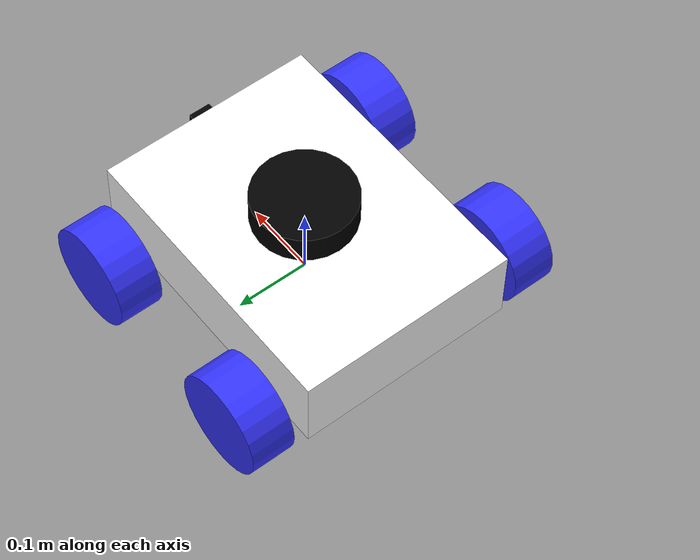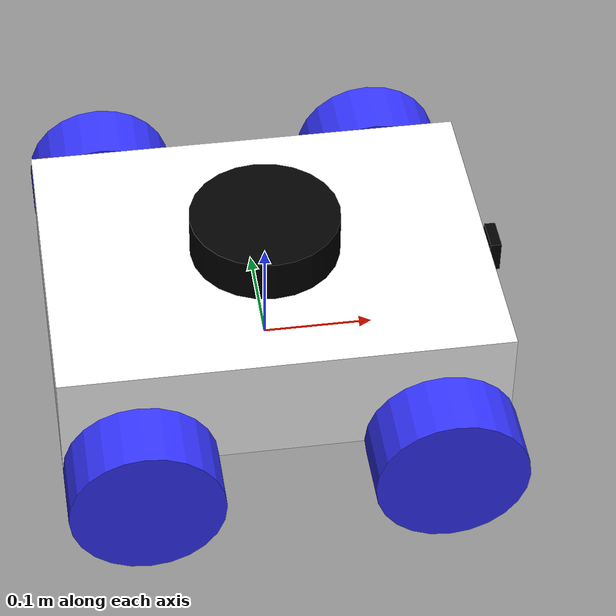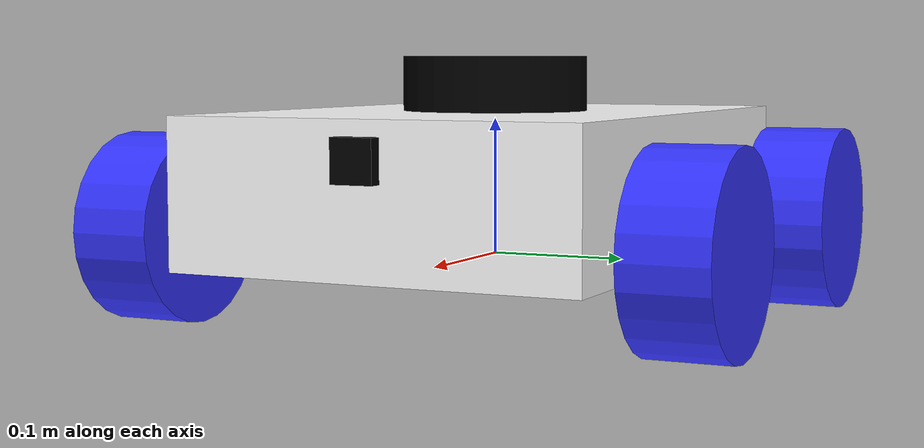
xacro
<?xml version="1.0"?>
<robot xmlns:xacro="http://www.ros.org/wiki/xacro"  name="robot">

    <xacro:arg name="use_ros2_control" default="true"/>
    <xacro:include filename="robot_core.xacro"/>

    <xacro:if value="$(arg use_ros2_control)">
        <xacro:include filename="ros2_control.xacro"/>
    </xacro:if>
    <xacro:unless value="$(arg use_ros2_control)">
        <xacro:include filename="gazebo_control.xacro"/>
    </xacro:unless>

    <xacro:include filename="lidar.xacro"/>
    <xacro:include filename="camera.xacro"/>

</robot>

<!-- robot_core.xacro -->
<robot xmlns:xacro="http://www.ros.org/wiki/xacro">

    <xacro:include filename="inertial_macros.xacro"/>

    <material name="white">
        <color rgba="1 1 1 1"/>
    </material>

    <material name="orange">
        <color rgba="1 0.3 0.1 1"/>
    </material>

    <material name="blue">
        <color rgba="0.2 0.2 1 1"/>
    </material>

    <material name="black">
        <color rgba="0 0 0 1"/>
    </material>

     <material name="red">
        <color rgba="0 0 0 1"/>
    </material>

        <!--BASE LINK-->

    <link name="base_link">
    </link>

        <!--CHASSIS LINK-->

    <joint name= "chassis_joint" type="fixed">
        <parent link="base_link"/>
        <child link="chassis" />
        <origin xyz="-0.2 0 0"/>
    </joint>

    <link name="chassis">
        <visual>
            <origin xyz="0.2 0 0.053"/>
            <geometry>
                <box size="0.4 0.3 0.106"/>
            </geometry>
            <material name="white"/>
        </visual>
         <collision>
            <origin xyz="0.2 0 0.053"/>
            <geometry>
                <box size="0.4 0.3 0.106"/>
            </geometry>
        </collision>
        <xacro:inertial_box mass="0.5" x="0.4" y="0.3" z="0.106">
            <origin xyz="0.2 0 0.053" rpy="0 0 0"/>
        </xacro:inertial_box>
    </link>

    <gazebo reference="chassis">
        <material>Gazebo/White</material>
    </gazebo>

        <!--LEFT WHELS-->

    <joint name="left_front_wheel_joint" type="continuous">
        <parent link="base_link"/>
        <child link="left_front_wheel"/>
        <origin xyz="0.1323 0.2 0.0235" rpy="-${pi/2} 0 0"/>
        <axis xyz="0 0 1"/>
    </joint>

    <link name="left_front_wheel">
        <visual>
            <geometry>
                <cylinder radius="0.068" length="0.06"/>
            </geometry>
            <material name="blue"/>
        </visual>
        <collision>
            <geometry>
                <cylinder radius="0.068" length="0.06"/>
            </geometry>
        </collision>
        <xacro:inertial_cylinder mass="0.1" length="0.06" radius="0.068">
            <origin xyz="0 0 0" rpy="0 0 0"/>
        </xacro:inertial_cylinder>
    </link>

    <gazebo reference="left_front_wheel">
        <material>Gazebo/Blue</material>
    </gazebo>

    <joint name="left_back_wheel_joint" type="continuous">
        <parent link="base_link"/>
        <child link="left_back_wheel"/>
        <origin xyz="-0.1323 0.2 0.0235" rpy="-${pi/2} 0 0"/>
        <axis xyz="0 0 1"/>
    </joint>

    <link name="left_back_wheel">
        <visual>
            <geometry>
                <cylinder radius="0.068" length="0.06"/>
            </geometry>
            <material name="blue"/>
        </visual>
        <collision>
            <geometry>
                <cylinder radius="0.068" length="0.06"/>
            </geometry>
        </collision>
        <xacro:inertial_cylinder mass="0.1" length="0.06" radius="0.068">
            <origin xyz="0 0 0" rpy="0 0 0"/>
        </xacro:inertial_cylinder>
    </link>

    <gazebo reference="left_back_wheel">
        <material>Gazebo/Blue</material>
    </gazebo>

        <!--RIGHT WHELS-->

    <joint name= "right_front_wheel_joint" type="continuous">
        <parent link="base_link"/>
        <child link="right_front_wheel"/>
        <origin xyz="0.1323 -0.2 0.0235" rpy="${pi/2} 0 0"/>
        <axis xyz="0 0 -1"/>
    </joint>

    <link name="right_front_wheel">
        <visual>
            <geometry>
                <cylinder radius="0.068" length="0.06"/>
            </geometry>
            <material name="blue"/>
        </visual>
         <collision>
            <geometry>
                <cylinder radius="0.068" length="0.06"/>
            </geometry>
        </collision>
        <xacro:inertial_cylinder mass="0.1" length="0.06" radius="0.068">
            <origin xyz="0 0 0" rpy="0 0 0"/>
        </xacro:inertial_cylinder>
    </link>

    <gazebo reference="right_front_wheel">
        <material>Gazebo/Blue</material>
    </gazebo>

    <joint name= "right_back_wheel_joint" type="continuous">
        <parent link="base_link"/>
        <child link="right_back_wheel"/>
        <origin xyz="-0.1323 -0.2 0.0235" rpy="${pi/2} 0 0"/>
        <axis xyz="0 0 -1"/>
    </joint>

    <link name="right_back_wheel">
        <visual>
            <geometry>
                <cylinder radius="0.068" length="0.06"/>
            </geometry>
            <material name="blue"/>
        </visual>
        <collision>
            <geometry>
                <cylinder radius="0.068" length="0.06"/>
            </geometry>
        </collision>
        <xacro:inertial_cylinder mass="0.1" length="0.06" radius="0.068">
            <origin xyz="0 0 0" rpy="0 0 0"/>
        </xacro:inertial_cylinder>
    </link>

    <gazebo reference="right_back_wheel">
        <material>Gazebo/Blue</material>
    </gazebo>

</robot>

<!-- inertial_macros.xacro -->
<robot xmlns:xacro="http://www.ros.org/wiki/xacro" >

    <!-- Specify some standard inertial calculations https://en.wikipedia.org/wiki/List_of_moments_of_inertia -->
    <!-- These make use of xacro's mathematical functionality -->
      <xacro:macro name="inertial_sphere" params="mass radius *origin">
        <inertial>
            <xacro:insert_block name="origin"/>
            <mass value="${mass}" />
            <inertia ixx="${(2/5) * mass * (radius*radius)}" ixy="0.0" ixz="0.0"
                    iyy="${(2/5) * mass * (radius*radius)}" iyz="0.0"
                    izz="${(2/5) * mass * (radius*radius)}" />
        </inertial>
    </xacro:macro>

     <xacro:macro name="inertial_box" params="mass x y z *origin">
        <inertial>
            <xacro:insert_block name="origin"/>
            <mass value="${mass}" />
            <inertia ixx="${(1/12) * mass * (y*y+z*z)}" ixy="0.0" ixz="0.0"
                    iyy="${(1/12) * mass * (x*x+z*z)}" iyz="0.0"
                    izz="${(1/12) * mass * (x*x+y*y)}" />
        </inertial>
    </xacro:macro>

    <xacro:macro name="inertial_cylinder" params="mass length radius *origin">
        <inertial>
            <xacro:insert_block name="origin"/>
            <mass value="${mass}" />
            <inertia ixx="${(1/12) * mass * (3*radius*radius + length*length)}" ixy="0.0" ixz="0.0"
                    iyy="${(1/12) * mass * (3*radius*radius + length*length)}" iyz="0.0"
                    izz="${(1/2) * mass * (radius*radius)}" />
        </inertial>
    </xacro:macro>

</robot>

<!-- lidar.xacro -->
<robot xmlns:xacro="http://www.ros.org/wiki/xacro" >

<joint name="laser_joint" type="fixed">
    <parent link="chassis"/>
    <child link="laser_frame"/>
    <origin xyz="0.2 0 0.126" rpy="0 0 0"/>
</joint>

<link name="laser_frame">
    <visual>
        <geometry>
            <cylinder radius="0.068" length="0.04"/>
        </geometry>
        <material name="red"/>
    </visual>
    <collision>
        <geometry>
            <cylinder radius="0.068" length="0.04"/>
        </geometry>
    </collision>
    <xacro:inertial_cylinder mass="0.1" length="0.04" radius="0.068">
        <origin xyz="0 0 0" rpy="0 0 0"/>
    </xacro:inertial_cylinder>
</link>

<gazebo reference="laser_frame">
        <material>Gazebo/Red</material>

        <sensor name="laser" type="ray">
            <pose> 0 0 0 0 0 0 </pose>
            <visualize>true</visualize>
            <update_rate>10</update_rate>
            <ray>
                <scan>
                    <horizontal>
                        <samples>360</samples>
                        <min_angle>-3.14</min_angle>
                        <max_angle>3.14</max_angle>
                    </horizontal>
                </scan>
                <range>
                    <min>0.3</min>
                    <max>12</max>
                </range>
            </ray>
            <plugin name="laser_controller" filename="libgazebo_ros_ray_sensor.so">
                <ros>
                    <argument>~/out:=scan</argument>
                </ros>
                <output_type>sensor_msgs/LaserScan</output_type>
                <frame_name>laser_frame</frame_name>
            </plugin>
        </sensor>
    </gazebo>

</robot>

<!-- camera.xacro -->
<robot xmlns:xacro="http://www.ros.org/wiki/xacro" >

<joint name="camera_joint" type="fixed">
    <parent link="chassis"/>
    <child link="camera_link"/>
    <origin xyz="0.41 0 0.08" rpy="0 0 0"/>
</joint>

<link name="camera_link">
    <visual>
        <geometry>
            <box size="0.010 0.03 0.03" length="0.04"/>
        </geometry>
        <material name="red"/>
    </visual>
</link>
<joint name="camera_optical_joint" type="fixed">
    <parent link="camera_link"/>
    <child link="camera_link_optical"/>
    <origin xyz="0 0 0" rpy="${-pi/2} 0 ${-pi/2}"/>
</joint>

<link name="camera_link_optical">
</link>

<gazebo reference="camera_link">
        <material>Gazebo/Red</material>

        <sensor name="camera" type="camera">
            <pose> 0 0 0 0 0 0 </pose>
            <visualize>true</visualize>
            <update_rate>10</update_rate>
            <camera>
                <horizontal_fov>1.089</horizontal_fov>
                <image>
                    <format>R8G8B8</format>
                    <width>640</width>
                    <height>480</height>
                </image>
                <clip>
                    <near>0.05</near>
                    <far>8.0</far>
                </clip>
            </camera>
            <plugin name="camera_controller" filename="libgazebo_ros_camera.so">
                <frame_name>camera_link_optical</frame_name>
            </plugin>
        </sensor>
    </gazebo>

</robot>
